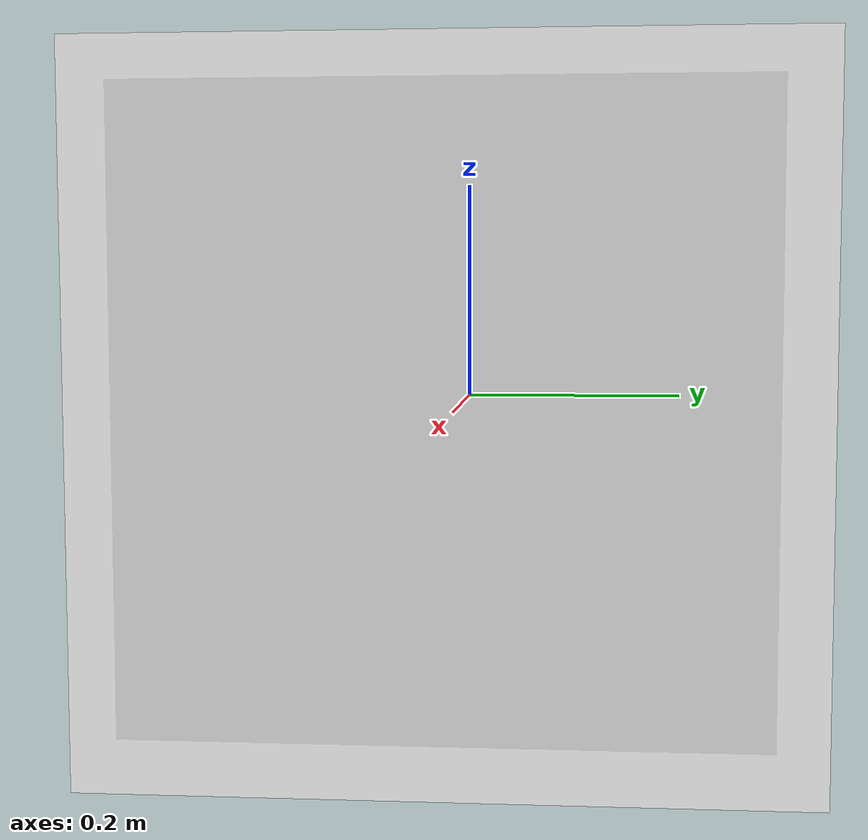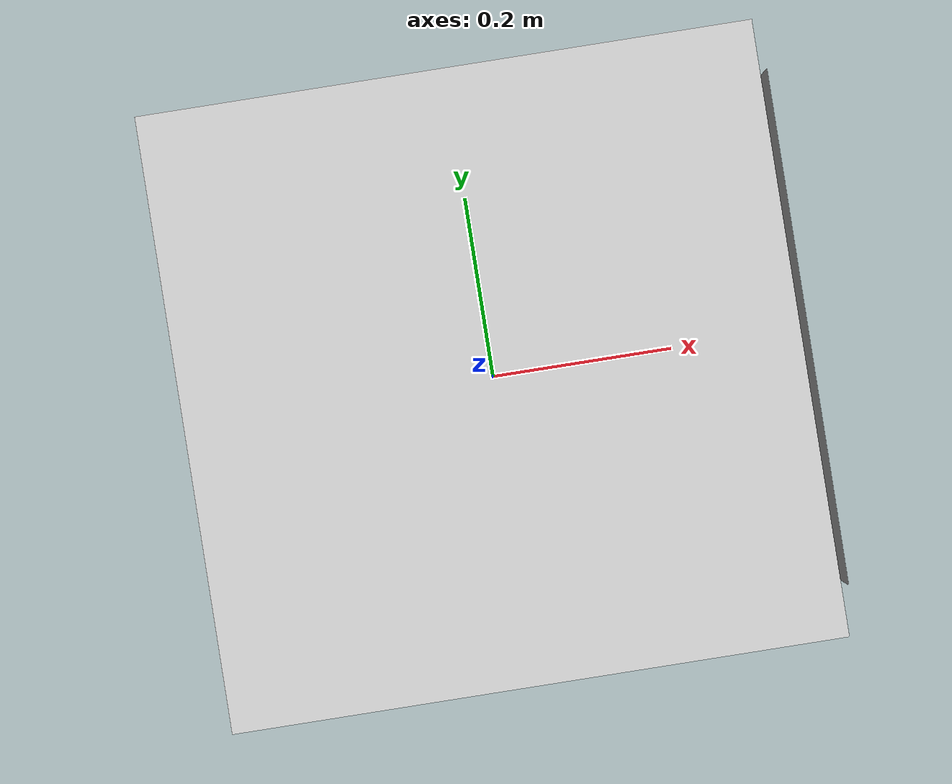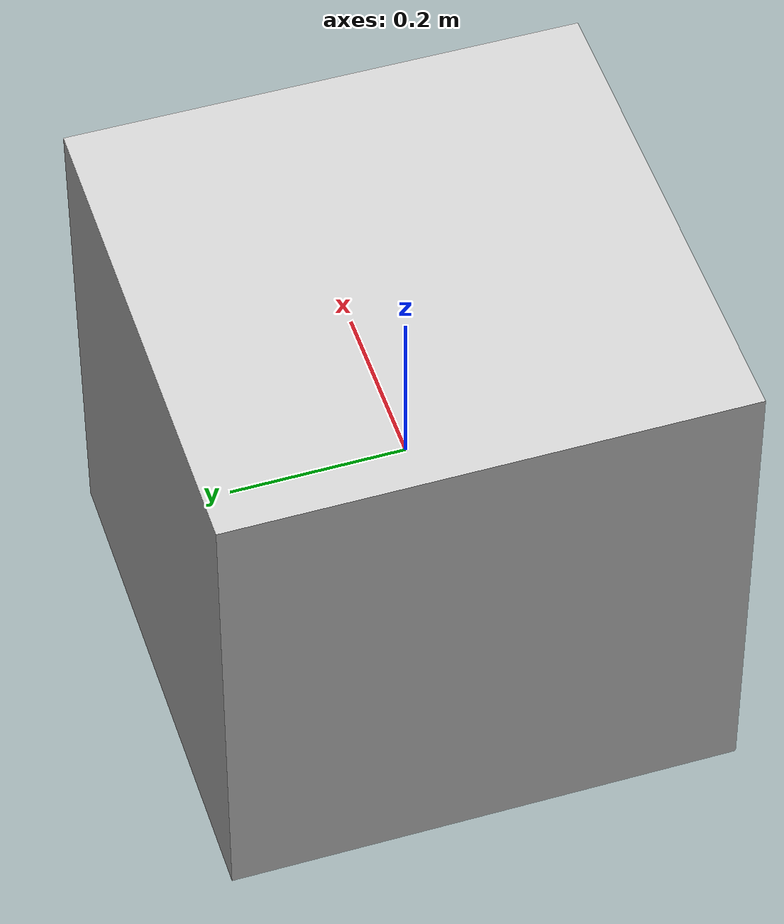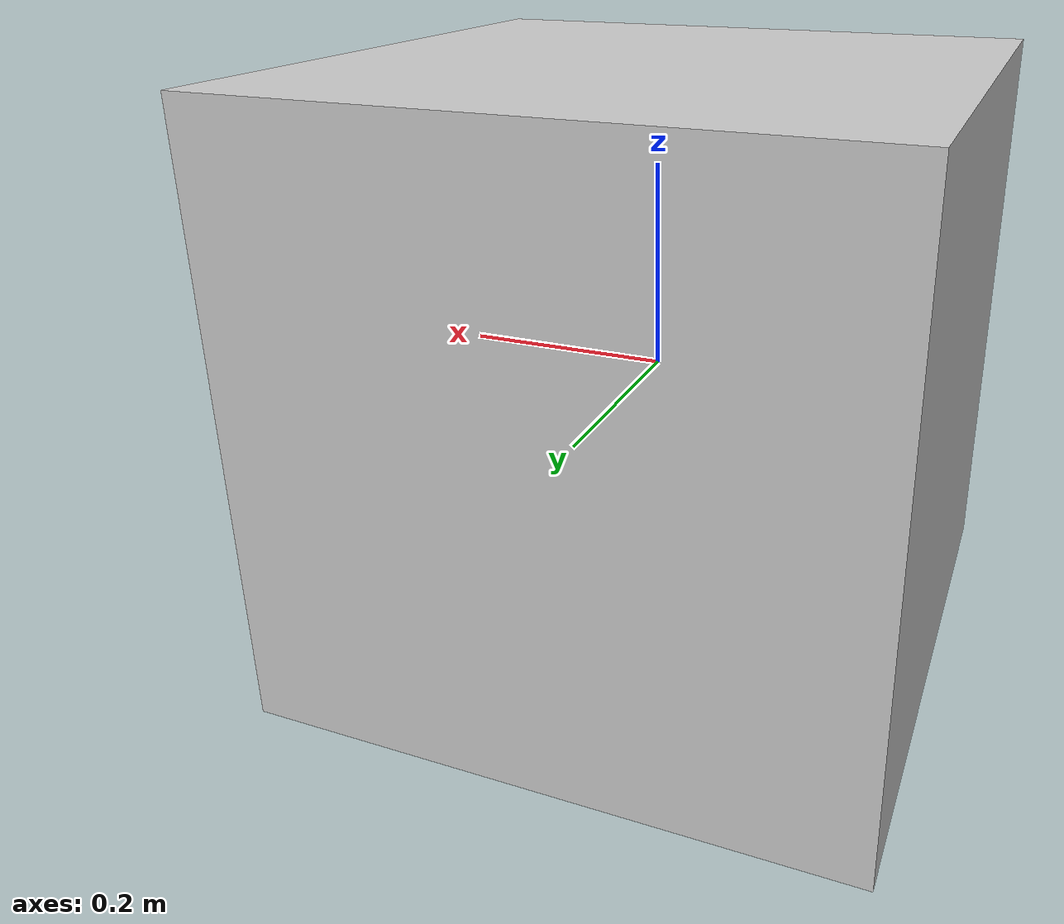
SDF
<?xml version="1.0" ?>
<sdf version="1.6">
    <model name="aruco_582_cube">
        <static>true</static> <!-- Set to true if the model is static -->
        <link name="aruco_582_cube_link">
            <visual name="aruco_582_cube_visual">
                <geometry>
                    <mesh>
                        <uri>model://aruco_582_cube/aruco_582_cube.dae</uri>
                    </mesh>
                </geometry>
            </visual>
            <collision name="aruco_582_cube_collision">
                <geometry>
                    <mesh>
                        <uri>model://aruco_582_cube/aruco_582_cube.dae</uri>
                    </mesh>
                </geometry>
            </collision>
        </link>
    </model>
</sdf>
